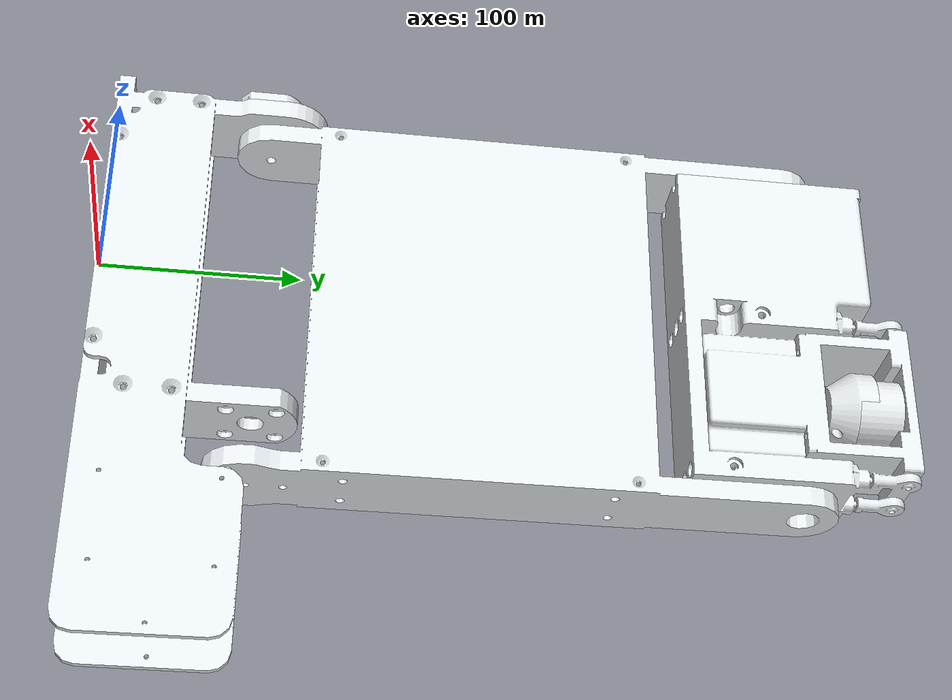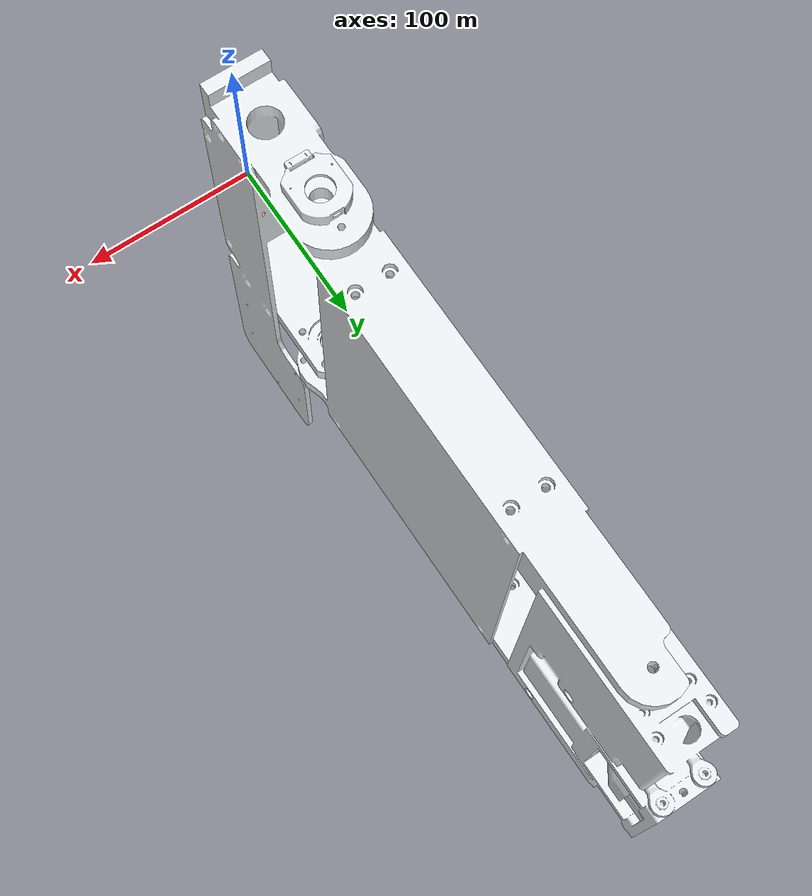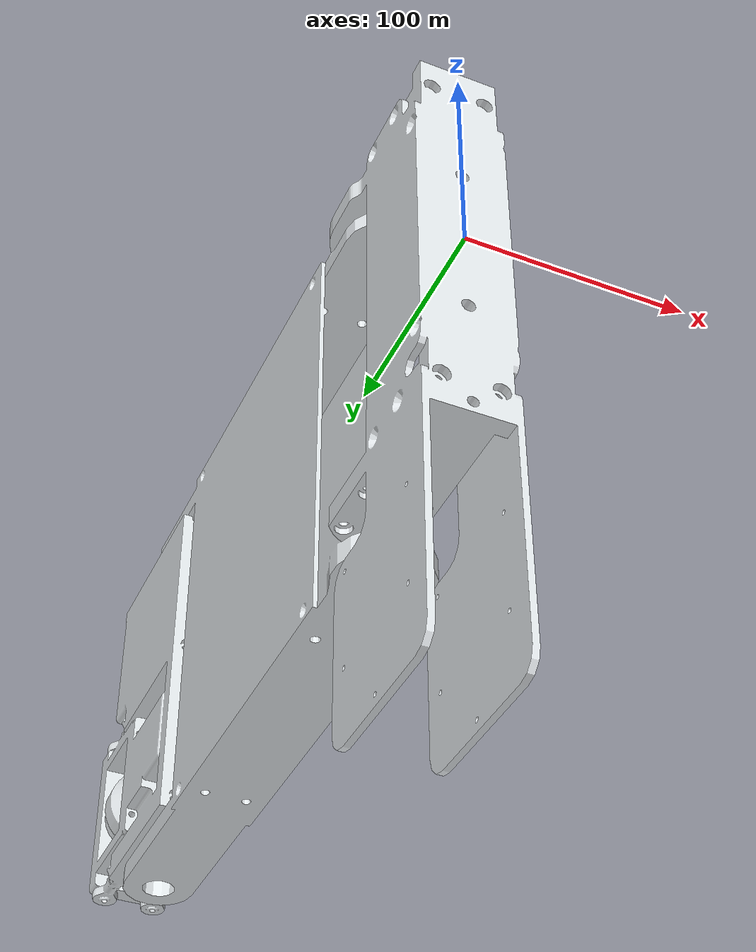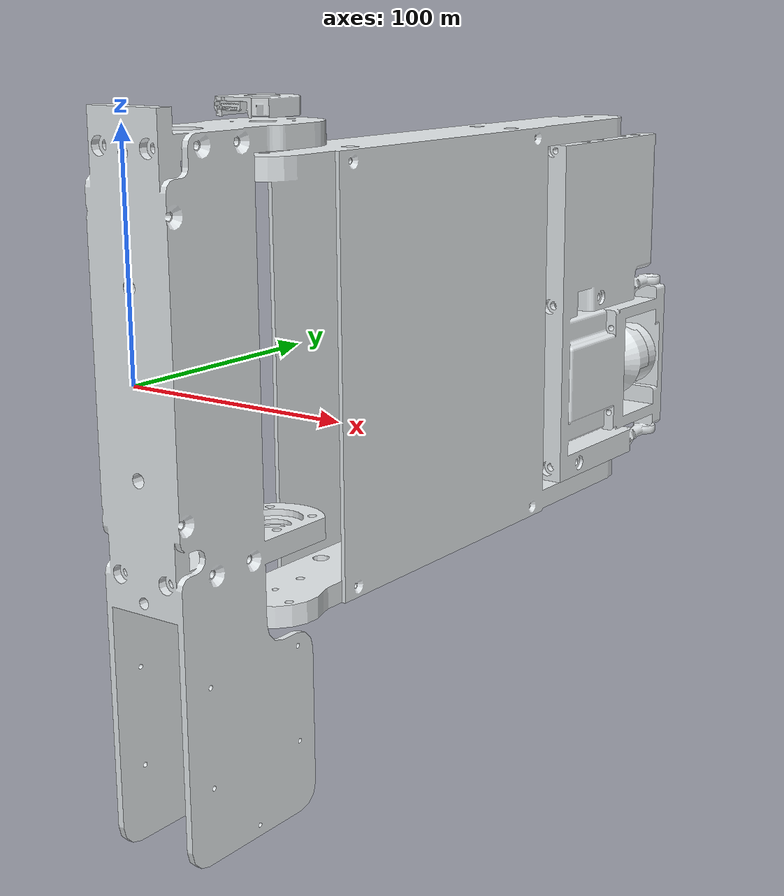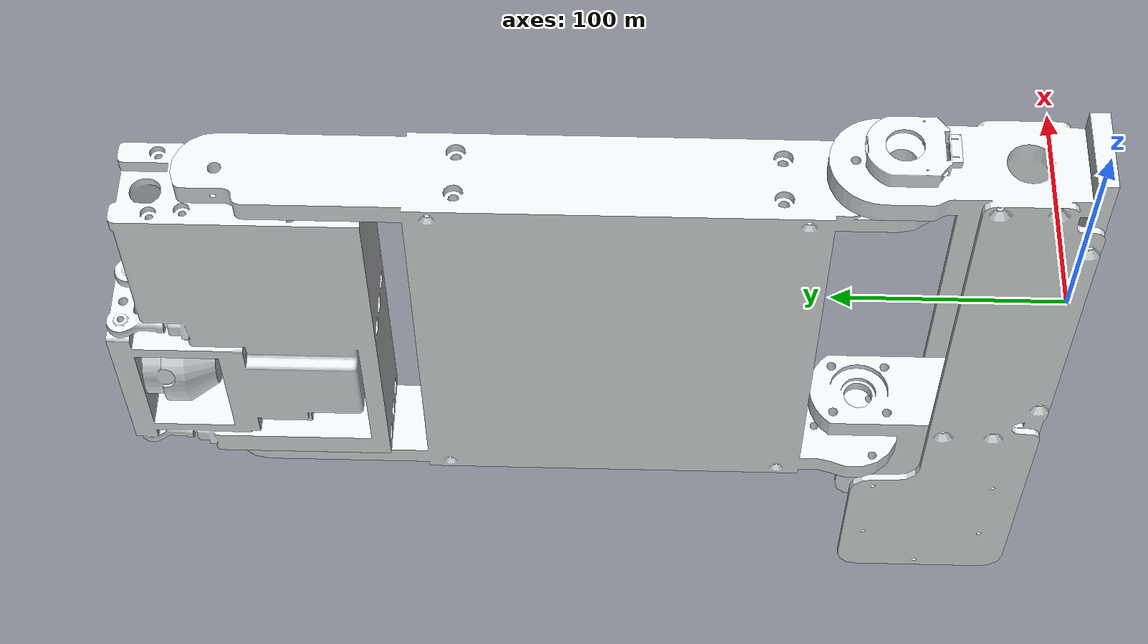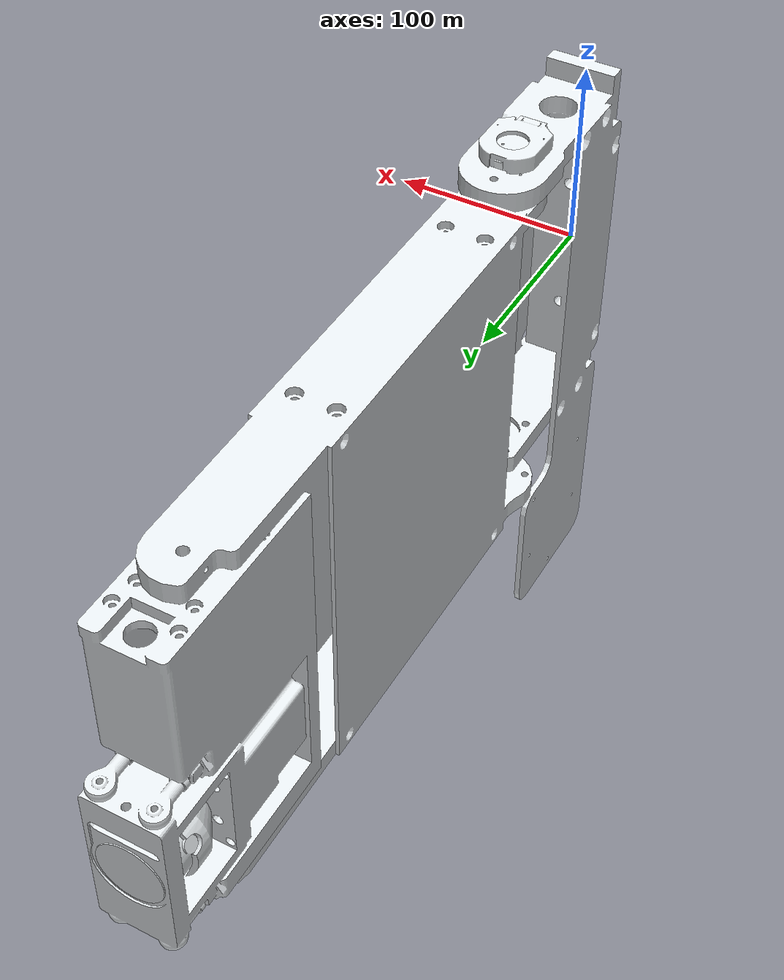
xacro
<?xml version="1.0" encoding="utf-8"?>
<robot name="Hand-Left" xmlns:xacro="http://wiki.ros.org/xacro">
  <xacro:include filename="Hand/Hand.urdf.xacro" />
  <xacro:Hand prefix="Left" color="0.89804 0.91765 0.92941 1" />
</robot>

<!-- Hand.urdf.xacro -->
<robot name="FADO-Hand.SLDASM" xmlns:xacro="http://wiki.ros.org/xacro">
  <xacro:macro name="Hand" params="prefix color">
    <link name="${prefix}_hand_link_base">
      <inertial>
        <origin xyz="1.3401999999999999E-06 31.313 -28.611" rpy="0 0 0" />
        <mass value="0.58902" />
        <inertia ixx="0.0028073" ixy="-2.209E-12" ixz="1.4526E-11" iyy="0.0026158" iyz="0.00013375" izz="0.00026433" />
      </inertial>
      <visual>
        <origin xyz="0 0 0" rpy="0 0 0" />
        <geometry>
          <mesh filename="Hand\meshes/visual/hand_link_base.STL" />
        </geometry>
        <material name="">
          <color rgba="${color}" />
        </material>
      </visual>
      <collision>
        <origin xyz="0 0 0" rpy="0 0 0" />
        <geometry>
          <mesh filename="Hand\meshes/collision/hand_link_base.STL" />
        </geometry>
      </collision>
    </link>
    <link name="${prefix}_hand_link_1">
      <inertial>
        <origin xyz="0.078245 123.00999999999999 -17.902" rpy="0 0 0" />
        <mass value="0.9156" />
        <inertia ixx="0.0061229" ixy="-3.976E-06" ixz="-8.986E-08" iyy="0.0012773" iyz="-1.541E-06" izz="0.0049578" />
      </inertial>
      <visual>
        <origin xyz="0 0 0" rpy="0 0 0" />
        <geometry>
          <mesh filename="Hand\meshes/visual/hand_link_1.STL" />
        </geometry>
        <material name="">
          <color rgba="${color}" />
        </material>
      </visual>
      <collision>
        <origin xyz="0 0 0" rpy="0 0 0" />
        <geometry>
          <mesh filename="Hand\meshes/collision/hand_link_1.STL" />
        </geometry>
      </collision>
    </link>
    <joint name="${prefix}_hand_link_base_to_hand_link_1" type="revolute">
      <origin xyz="0 80.5 0" rpy="0 0 0" />
      <parent link="${prefix}_hand_link_base" />
      <child link="${prefix}_hand_link_1" />
      <axis xyz="0 0 1" />
      <limit lower="-1.5707" upper="1.5707" effort="0" velocity="0" />
    </joint>
    <link name="${prefix}_hand_link_2">
      <inertial>
        <origin xyz="-0.20099 -17.898 -22.892" rpy="0 0 0" />
        <mass value="0.51508" />
        <inertia ixx="0.00066677" ixy="-1.2886E-06" ixz="2.8391E-07" iyy="0.00054582" iyz="2.8064E-06" izz="0.00026757" />
      </inertial>
      <visual>
        <origin xyz="0 0 0" rpy="0 0 0" />
        <geometry>
          <mesh filename="Hand\meshes/visual/hand_link_2.STL" />
        </geometry>
        <material name="">
          <color rgba="${color}" />
        </material>
      </visual>
      <collision>
        <origin xyz="0 0 0" rpy="0 0 0" />
        <geometry>
          <mesh filename="Hand\meshes/collision/hand_link_2.STL" />
        </geometry>
      </collision>
    </link>
    <joint name="${prefix}_hand_link_1_to_hand_link_2" type="revolute">
      <origin xyz="0 270 0" rpy="0 0 0" />
      <parent link="${prefix}_hand_link_1" />
      <child link="${prefix}_hand_link_2" />
      <axis xyz="0 0 1" />
      <limit lower="-1.5707" upper="1.5707" effort="0" velocity="0" />
    </joint>
    <link name="${prefix}_tool_rotate">
      <inertial>
        <origin xyz="-0.47146 66.03699999999999 1.2923" rpy="0 0 0" />
        <mass value="0.013164" />
        <inertia ixx="1.5074E-06" ixy="4.0748E-08" ixz="-5.9309E-08" iyy="2.5506E-06" iyz="-1.1169E-07" izz="1.6484E-06" />
      </inertial>
      <visual>
        <origin xyz="0 0 0" rpy="0 0 0" />
        <geometry>
          <mesh filename="Hand\meshes/visual/tool_rotate.STL" />
        </geometry>
        <material name="">
          <color rgba="${color}" />
        </material>
      </visual>
      <collision>
        <origin xyz="0 0 0" rpy="0 0 0" />
        <geometry>
          <mesh filename="Hand\meshes/collision/tool_rotate.STL" />
        </geometry>
      </collision>
    </link>
    <joint name="${prefix}_hand_link_2_to_tool_rotate" type="revolute">
      <origin xyz="0 -40.958 -55.129" rpy="0 0 0" />
      <parent link="${prefix}_hand_link_2" />
      <child link="${prefix}_tool_rotate" />
      <axis xyz="0 1 0" />
      <limit lower="-6.2831" upper="6.2831" effort="0" velocity="0" />
    </joint>
    <link name="${prefix}_tool_0">
      <inertial>
        <origin xyz="-0.018167 -24.185000000000002 0.049811999999999995" rpy="0 0 0" />
        <mass value="0.028269" />
        <inertia ixx="4.0894E-06" ixy="-2.9751E-09" ixz="-2.5563E-11" iyy="4.5453E-06" iyz="8.1573E-09" izz="4.0894E-06" />
      </inertial>
      <visual>
        <origin xyz="0 0 0" rpy="0 0 0" />
        <geometry>
          <mesh filename="Hand\meshes/visual/tool_0.STL" />
        </geometry>
        <material name="">
          <color rgba="${color}" />
        </material>
      </visual>
      <collision>
        <origin xyz="0 0 0" rpy="0 0 0" />
        <geometry>
          <mesh filename="Hand\meshes/collision/tool_0.STL" />
        </geometry>
      </collision>
    </link>
    <joint name="${prefix}_tool_rotate_to_tool_0" type="fixed">
      <origin xyz="0 107.96 0" rpy="0 0 0" />
      <parent link="${prefix}_tool_rotate" />
      <child link="${prefix}_tool_0" />
      <axis xyz="0 0 0" />
    </joint>
    <link name="${prefix}_laser_link">
      <inertial>
        <origin xyz="0 0 0" rpy="0 0 0" />
        <mass value="0" />
        <inertia ixx="0" ixy="0" ixz="0" iyy="0" iyz="0" izz="0" />
      </inertial>
      <visual>
        <origin xyz="0 0 0" rpy="0 0 0" />
        <geometry>
          <mesh filename="Hand\meshes/visual/laser_link.STL" />
        </geometry>
        <material name="">
          <color rgba="${color}" />
        </material>
      </visual>
      <collision>
        <origin xyz="0 0 0" rpy="0 0 0" />
        <geometry>
          <mesh filename="Hand\meshes/collision/laser_link.STL" />
        </geometry>
      </collision>
    </link>
    <joint name="${prefix}_hand_link_base_to_laser_link" type="fixed">
      <origin xyz="0 358 -146.14" rpy="0 0 0" />
      <parent link="${prefix}_hand_link_base" />
      <child link="${prefix}_laser_link" />
      <axis xyz="0 0 0" />
    </joint>
  </xacro:macro>
</robot>
